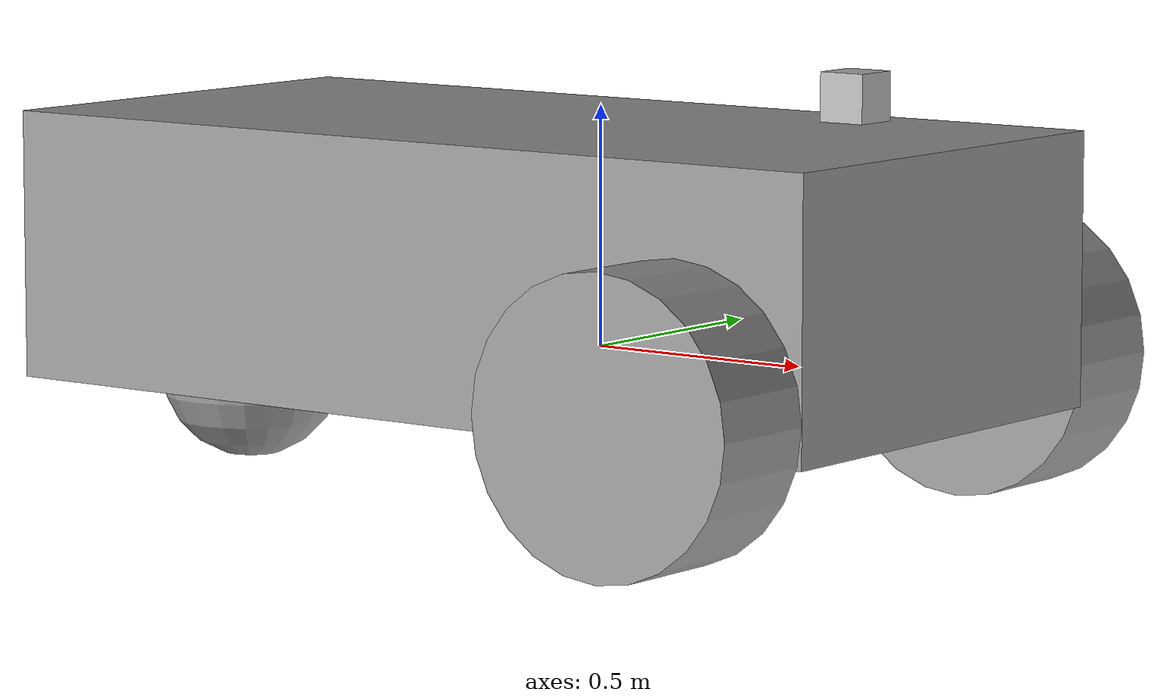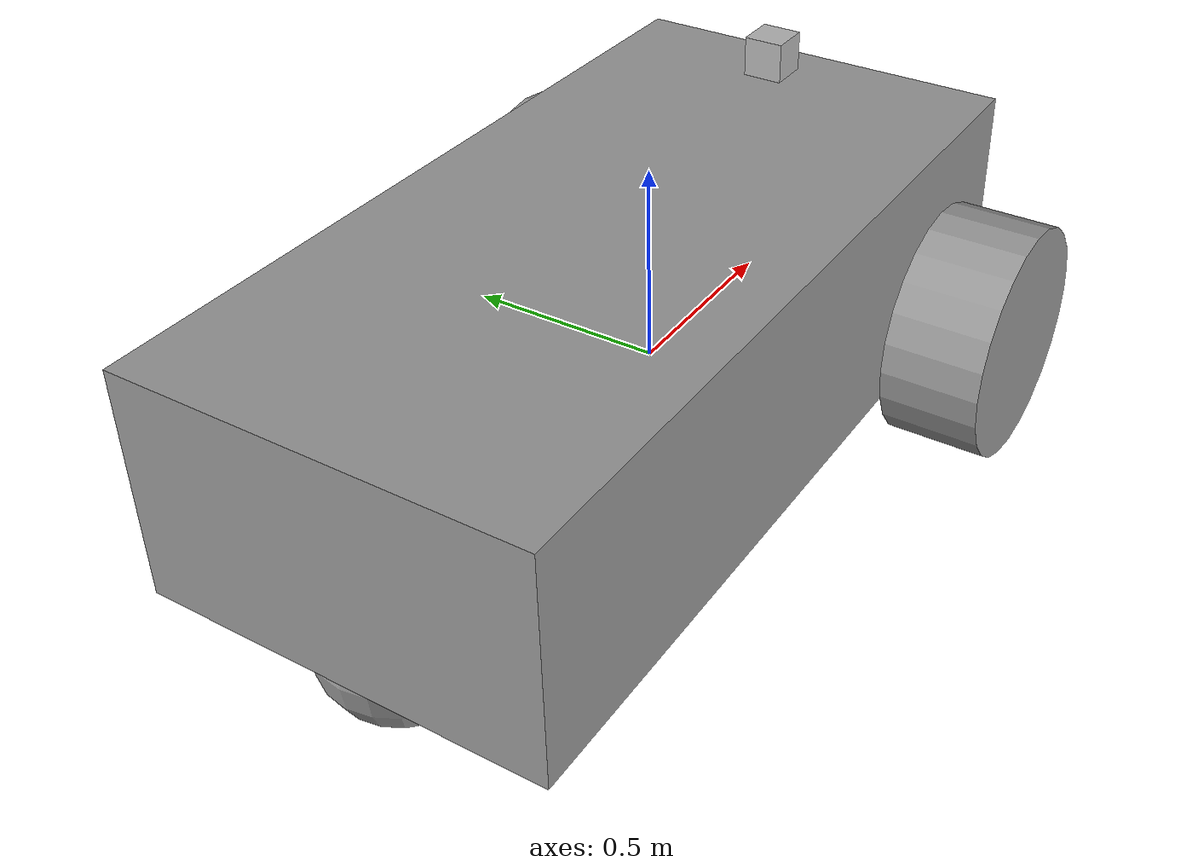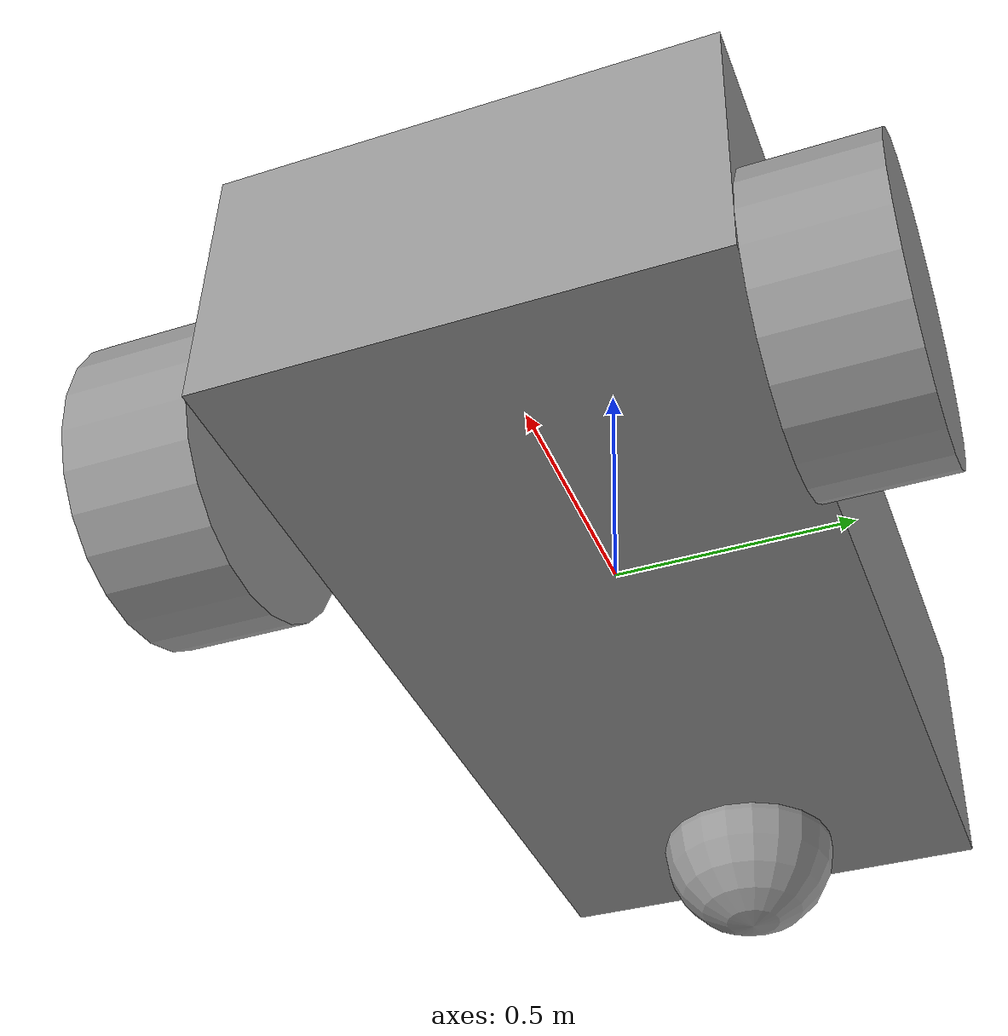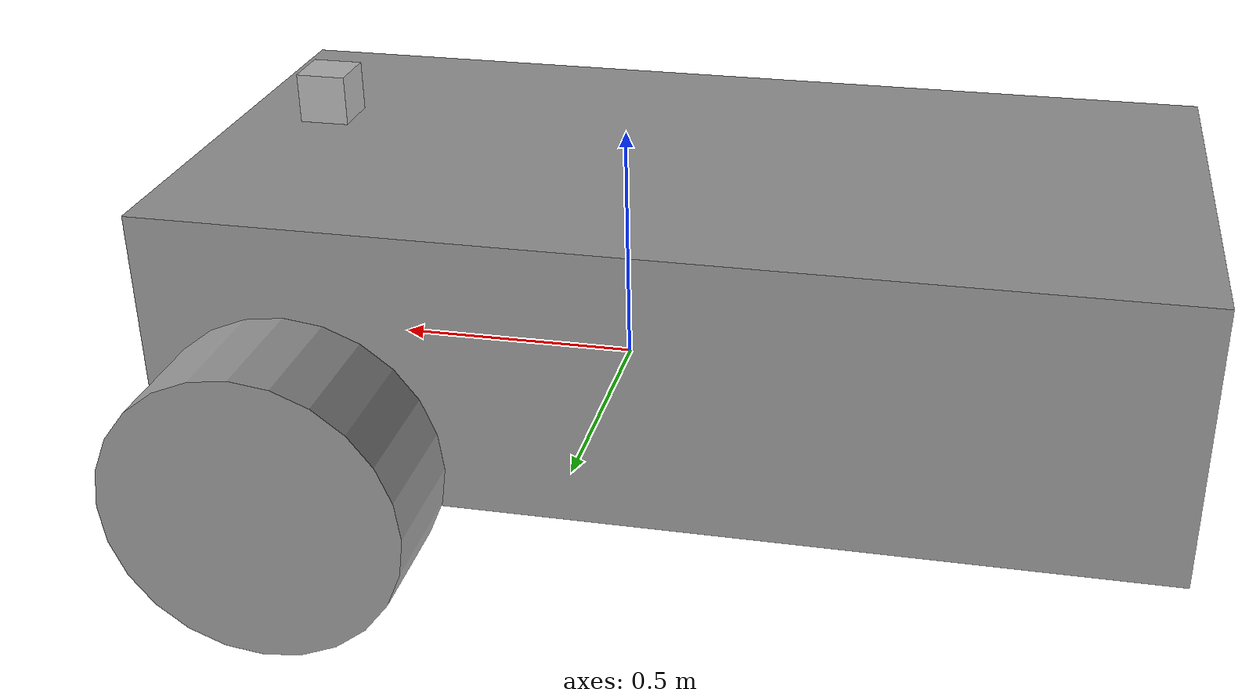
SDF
<?xml version='1.0'?>
<sdf version='1.7'>
  <model name='follower_vehicle'>
    <link name='caster'>
      <pose>-0.957138 0 -0.125 0 -0 0</pose>
      <inertial>
        <mass>1</mass>
        <inertia>
          <ixx>0.1</ixx>
          <ixy>0</ixy>
          <ixz>0</ixz>
          <iyy>0.1</iyy>
          <iyz>0</iyz>
          <izz>0.1</izz>
        </inertia>
        <pose>0 0 0 0 -0 0</pose>
      </inertial>
      <self_collide>0</self_collide>
      <enable_wind>0</enable_wind>
      <kinematic>0</kinematic>
      <visual name='visual'>
        <pose>0 0 0 0 -0 0</pose>
        <geometry>
          <sphere>
            <radius>0.2</radius>
          </sphere>
        </geometry>
        <material>
          <script>
            <uri>file://media/materials/scripts/gazebo.material</uri>
            <name>Gazebo/Grey</name>
          </script>
          <shader type='pixel'/>
        </material>
        <cast_shadows>1</cast_shadows>
        <transparency>0</transparency>
      </visual>
      <collision name='collision'>
        <laser_retro>0</laser_retro>
        <max_contacts>10</max_contacts>
        <pose>0 0 0 0 -0 0</pose>
        <geometry>
          <sphere>
            <radius>0.2</radius>
          </sphere>
        </geometry>
        <surface>
          <friction>
            <ode>
              <mu>1</mu>
              <mu2>1</mu2>
              <fdir1>0 0 0</fdir1>
              <slip1>0</slip1>
              <slip2>0</slip2>
            </ode>
            <torsional>
              <coefficient>1</coefficient>
              <patch_radius>0</patch_radius>
              <surface_radius>0</surface_radius>
              <use_patch_radius>1</use_patch_radius>
              <ode>
                <slip>0</slip>
              </ode>
            </torsional>
          </friction>
          <bounce>
            <restitution_coefficient>0</restitution_coefficient>
            <threshold>1e+06</threshold>
          </bounce>
          <contact>
            <collide_without_contact>0</collide_without_contact>
            <collide_without_contact_bitmask>1</collide_without_contact_bitmask>
            <collide_bitmask>1</collide_bitmask>
            <ode>
              <soft_cfm>0</soft_cfm>
              <soft_erp>0.2</soft_erp>
              <kp>1e+13</kp>
              <kd>1</kd>
              <max_vel>0.01</max_vel>
              <min_depth>0</min_depth>
            </ode>
            <bullet>
              <split_impulse>1</split_impulse>
              <split_impulse_penetration_threshold>-0.01</split_impulse_penetration_threshold>
              <soft_cfm>0</soft_cfm>
              <soft_erp>0.2</soft_erp>
              <kp>1e+13</kp>
              <kd>1</kd>
            </bullet>
          </contact>
        </surface>
      </collision>
    </link>
    <link name='chassis'>
      <pose>-0.151427 0 0.175 0 -0 0</pose>
      <inertial>
        <mass>1.14395</mass>
        <inertia>
          <ixx>0.126164</ixx>
          <ixy>0</ixy>
          <ixz>0</ixz>
          <iyy>0.416519</iyy>
          <iyz>0</iyz>
          <izz>0.481014</izz>
        </inertia>
        <pose>0 0 0 0 -0 0</pose>
      </inertial>
      <self_collide>0</self_collide>
      <enable_wind>0</enable_wind>
      <kinematic>0</kinematic>
      <visual name='visual'>
        <pose>0 0 0 0 -0 0</pose>
        <geometry>
          <box>
            <size>2.01142 1 0.568726</size>
          </box>
        </geometry>
        <material>
          <script>
            <uri>file://media/materials/scripts/gazebo.material</uri>
            <name>Gazebo/Grey</name>
          </script>
          <shader type='pixel'/>
        </material>
        <cast_shadows>1</cast_shadows>
        <transparency>0</transparency>
      </visual>
      <collision name='collision'>
        <laser_retro>0</laser_retro>
        <max_contacts>10</max_contacts>
        <pose>0 0 0 0 -0 0</pose>
        <geometry>
          <box>
            <size>2.01142 1 0.568726</size>
          </box>
        </geometry>
        <surface>
          <friction>
            <ode>
              <mu>1</mu>
              <mu2>1</mu2>
              <fdir1>0 0 0</fdir1>
              <slip1>0</slip1>
              <slip2>0</slip2>
            </ode>
            <torsional>
              <coefficient>1</coefficient>
              <patch_radius>0</patch_radius>
              <surface_radius>0</surface_radius>
              <use_patch_radius>1</use_patch_radius>
              <ode>
                <slip>0</slip>
              </ode>
            </torsional>
          </friction>
          <bounce>
            <restitution_coefficient>0</restitution_coefficient>
            <threshold>1e+06</threshold>
          </bounce>
          <contact>
            <collide_without_contact>0</collide_without_contact>
            <collide_without_contact_bitmask>1</collide_without_contact_bitmask>
            <collide_bitmask>1</collide_bitmask>
            <ode>
              <soft_cfm>0</soft_cfm>
              <soft_erp>0.2</soft_erp>
              <kp>1e+13</kp>
              <kd>1</kd>
              <max_vel>0.01</max_vel>
              <min_depth>0</min_depth>
            </ode>
            <bullet>
              <split_impulse>1</split_impulse>
              <split_impulse_penetration_threshold>-0.01</split_impulse_penetration_threshold>
              <soft_cfm>0</soft_cfm>
              <soft_erp>0.2</soft_erp>
              <kp>1e+13</kp>
              <kd>1</kd>
            </bullet>
          </contact>
        </surface>
      </collision>
    </link>
    <link name='wheel_1'>
      <pose>0.554283 0.625029 -0.025 1.5707 -0 0</pose>
      <inertial>
        <mass>2</mass>
        <inertia>
          <ixx>0.145833</ixx>
          <ixy>0</ixy>
          <ixz>0</ixz>
          <iyy>0.145833</iyy>
          <iyz>0</iyz>
          <izz>0.125</izz>
        </inertia>
        <pose>0 0 0 0 -0 0</pose>
      </inertial>
      <self_collide>0</self_collide>
      <enable_wind>0</enable_wind>
      <kinematic>0</kinematic>
      <visual name='visual'>
        <pose>0 0 0 0 -0 0</pose>
        <geometry>
          <cylinder>
            <radius>0.3</radius>
            <length>0.25</length>
          </cylinder>
        </geometry>
        <material>
          <script>
            <uri>file://media/materials/scripts/gazebo.material</uri>
            <name>Gazebo/Grey</name>
          </script>
          <shader type='pixel'/>
        </material>
        <cast_shadows>1</cast_shadows>
        <transparency>0</transparency>
      </visual>
      <collision name='collision'>
        <laser_retro>0</laser_retro>
        <max_contacts>10</max_contacts>
        <pose>0 0 0 0 -0 0</pose>
        <geometry>
          <cylinder>
            <radius>0.3</radius>
            <length>0.25</length>
          </cylinder>
        </geometry>
        <surface>
          <friction>
            <ode>
              <mu>1</mu>
              <mu2>1</mu2>
              <fdir1>0 0 0</fdir1>
              <slip1>0</slip1>
              <slip2>0</slip2>
            </ode>
            <torsional>
              <coefficient>1</coefficient>
              <patch_radius>0</patch_radius>
              <surface_radius>0</surface_radius>
              <use_patch_radius>1</use_patch_radius>
              <ode>
                <slip>0</slip>
              </ode>
            </torsional>
          </friction>
          <bounce>
            <restitution_coefficient>0</restitution_coefficient>
            <threshold>1e+06</threshold>
          </bounce>
          <contact>
            <collide_without_contact>0</collide_without_contact>
            <collide_without_contact_bitmask>1</collide_without_contact_bitmask>
            <collide_bitmask>1</collide_bitmask>
            <ode>
              <soft_cfm>0</soft_cfm>
              <soft_erp>0.2</soft_erp>
              <kp>1e+13</kp>
              <kd>1</kd>
              <max_vel>0.01</max_vel>
              <min_depth>0</min_depth>
            </ode>
            <bullet>
              <split_impulse>1</split_impulse>
              <split_impulse_penetration_threshold>-0.01</split_impulse_penetration_threshold>
              <soft_cfm>0</soft_cfm>
              <soft_erp>0.2</soft_erp>
              <kp>1e+13</kp>
              <kd>1</kd>
            </bullet>
          </contact>
        </surface>
      </collision>
    </link>
    <link name='wheel_2'>
      <pose>0.554282 -0.625029 -0.025 1.5707 -0 0</pose>
      <inertial>
        <mass>2</mass>
        <inertia>
          <ixx>0.145833</ixx>
          <ixy>0</ixy>
          <ixz>0</ixz>
          <iyy>0.145833</iyy>
          <iyz>0</iyz>
          <izz>0.125</izz>
        </inertia>
        <pose>0 0 0 0 -0 0</pose>
      </inertial>
      <self_collide>0</self_collide>
      <enable_wind>0</enable_wind>
      <kinematic>0</kinematic>
      <visual name='visual'>
        <pose>0 0 0 0 -0 0</pose>
        <geometry>
          <cylinder>
            <radius>0.3</radius>
            <length>0.25</length>
          </cylinder>
        </geometry>
        <material>
          <script>
            <uri>file://media/materials/scripts/gazebo.material</uri>
            <name>Gazebo/Grey</name>
          </script>
          <shader type='pixel'/>
        </material>
        <cast_shadows>1</cast_shadows>
        <transparency>0</transparency>
      </visual>
      <collision name='collision'>
        <laser_retro>0</laser_retro>
        <max_contacts>10</max_contacts>
        <pose>0 0 0 0 -0 0</pose>
        <geometry>
          <cylinder>
            <radius>0.3</radius>
            <length>0.25</length>
          </cylinder>
        </geometry>
        <surface>
          <friction>
            <ode>
              <mu>1</mu>
              <mu2>1</mu2>
              <fdir1>0 0 0</fdir1>
              <slip1>0</slip1>
              <slip2>0</slip2>
            </ode>
            <torsional>
              <coefficient>1</coefficient>
              <patch_radius>0</patch_radius>
              <surface_radius>0</surface_radius>
              <use_patch_radius>1</use_patch_radius>
              <ode>
                <slip>0</slip>
              </ode>
            </torsional>
          </friction>
          <bounce>
            <restitution_coefficient>0</restitution_coefficient>
            <threshold>1e+06</threshold>
          </bounce>
          <contact>
            <collide_without_contact>0</collide_without_contact>
            <collide_without_contact_bitmask>1</collide_without_contact_bitmask>
            <collide_bitmask>1</collide_bitmask>
            <ode>
              <soft_cfm>0</soft_cfm>
              <soft_erp>0.2</soft_erp>
              <kp>1e+13</kp>
              <kd>1</kd>
              <max_vel>0.01</max_vel>
              <min_depth>0</min_depth>
            </ode>
            <bullet>
              <split_impulse>1</split_impulse>
              <split_impulse_penetration_threshold>-0.01</split_impulse_penetration_threshold>
              <soft_cfm>0</soft_cfm>
              <soft_erp>0.2</soft_erp>
              <kp>1e+13</kp>
              <kd>1</kd>
            </bullet>
          </contact>
        </surface>
      </collision>
    </link>
    <model name='depth_camera'>
      <link name='link'>
        <pose>0.05 0.05 0.05 0 -0 0</pose>
        <inertial>
          <mass>0.1</mass>
          <inertia>
            <ixx>0.000166667</ixx>
            <iyy>0.000166667</iyy>
            <izz>0.000166667</izz>
            <ixy>0</ixy>
            <ixz>0</ixz>
            <iyz>0</iyz>
          </inertia>
          <pose>0 0 0 0 -0 0</pose>
        </inertial>
        <collision name='collision'>
          <geometry>
            <box>
              <size>0.1 0.1 0.1</size>
            </box>
          </geometry>
          <max_contacts>10</max_contacts>
          <surface>
            <contact>
              <ode/>
            </contact>
            <bounce/>
            <friction>
              <torsional>
                <ode/>
              </torsional>
              <ode/>
            </friction>
          </surface>
        </collision>
        <visual name='visual'>
          <geometry>
            <box>
              <size>0.1 0.1 0.1</size>
            </box>
          </geometry>
        </visual>
        <sensor name='camera' type='depth'>
          <camera name='depth'>
            <horizontal_fov>1.047</horizontal_fov>
            <image>
              <width>320</width>
              <height>240</height>
            </image>
            <clip>
              <near>0.1</near>
              <far>100</far>
            </clip>
          </camera>
          <always_on>1</always_on>
          <update_rate>30</update_rate>
          <visualize>1</visualize>
        </sensor>
        <self_collide>0</self_collide>
        <enable_wind>0</enable_wind>
        <kinematic>0</kinematic>
      </link>
      <pose>0.569632 -0.03223 0.502056 0 -0 0</pose>
    </model>
    <joint name='chassis_caster_ball' type='ball'>
      <parent>chassis</parent>
      <child>caster</child>
      <pose>0 0 0 0 -0 0</pose>
      <physics>
        <ode>
          <limit>
            <cfm>0</cfm>
            <erp>0.2</erp>
          </limit>
          <suspension>
            <cfm>0</cfm>
            <erp>0.2</erp>
          </suspension>
        </ode>
      </physics>
    </joint>
    <joint name='chassis_depth_camera_link_fixed' type='fixed'>
      <parent>chassis</parent>
      <child>depth_camera::link</child>
      <pose>0 0 0 0 -0 0</pose>
      <physics>
        <ode>
          <limit>
            <cfm>0</cfm>
            <erp>0.2</erp>
          </limit>
          <suspension>
            <cfm>0</cfm>
            <erp>0.2</erp>
          </suspension>
        </ode>
      </physics>
    </joint>
    <joint name='chassis_wheel_1_revolute' type='revolute'>
      <parent>chassis</parent>
      <child>wheel_1</child>
      <pose>0 0 0 0 -0 0</pose>
      <axis>
        <xyz>0 0 1</xyz>
        <limit>
          <lower>-1.79769e+308</lower>
          <upper>1.79769e+308</upper>
          <effort>-1</effort>
          <velocity>-1</velocity>
        </limit>
        <dynamics>
          <spring_reference>0</spring_reference>
          <spring_stiffness>0</spring_stiffness>
          <damping>0</damping>
          <friction>0</friction>
        </dynamics>
      </axis>
      <physics>
        <ode>
          <limit>
            <cfm>0</cfm>
            <erp>0.2</erp>
          </limit>
          <suspension>
            <cfm>0</cfm>
            <erp>0.2</erp>
          </suspension>
        </ode>
      </physics>
    </joint>
    <joint name='chassis_wheel_2_revolute' type='revolute'>
      <parent>chassis</parent>
      <child>wheel_2</child>
      <pose>0 0 0 0 -0 0</pose>
      <axis>
        <xyz>0 0 1</xyz>
        <limit>
          <lower>-1.79769e+308</lower>
          <upper>1.79769e+308</upper>
          <effort>-1</effort>
          <velocity>-1</velocity>
        </limit>
        <dynamics>
          <spring_reference>0</spring_reference>
          <spring_stiffness>0</spring_stiffness>
          <damping>0</damping>
          <friction>0</friction>
        </dynamics>
      </axis>
      <physics>
        <ode>
          <limit>
            <cfm>0</cfm>
            <erp>0.2</erp>
          </limit>
          <suspension>
            <cfm>0</cfm>
            <erp>0.2</erp>
          </suspension>
        </ode>
      </physics>
    </joint>
    <static>1</static>
    <allow_auto_disable>1</allow_auto_disable>
    <plugin name='follower' filename='libFollowerPlugin.so'/>
  </model>
</sdf>
